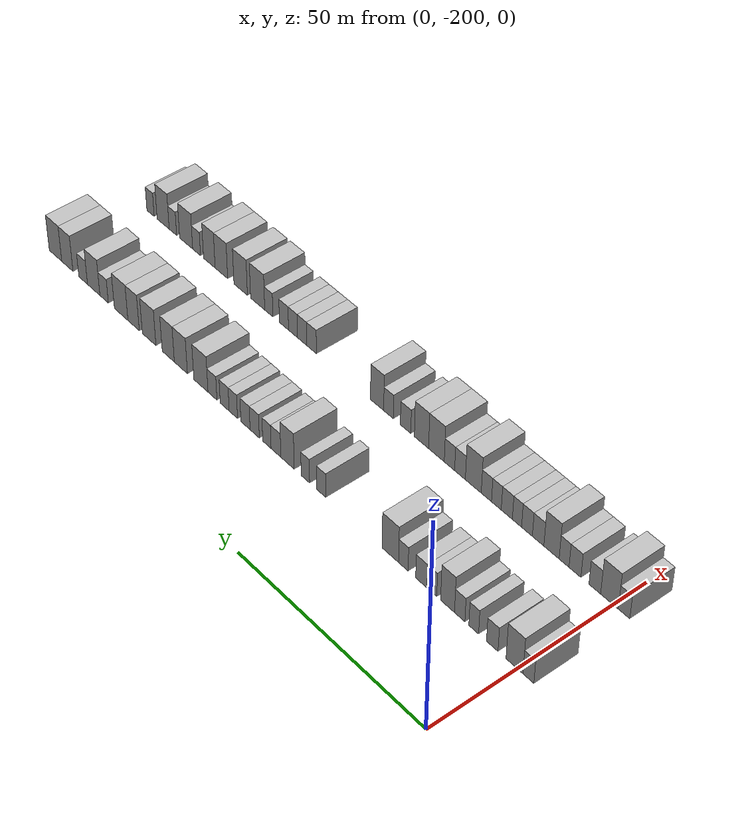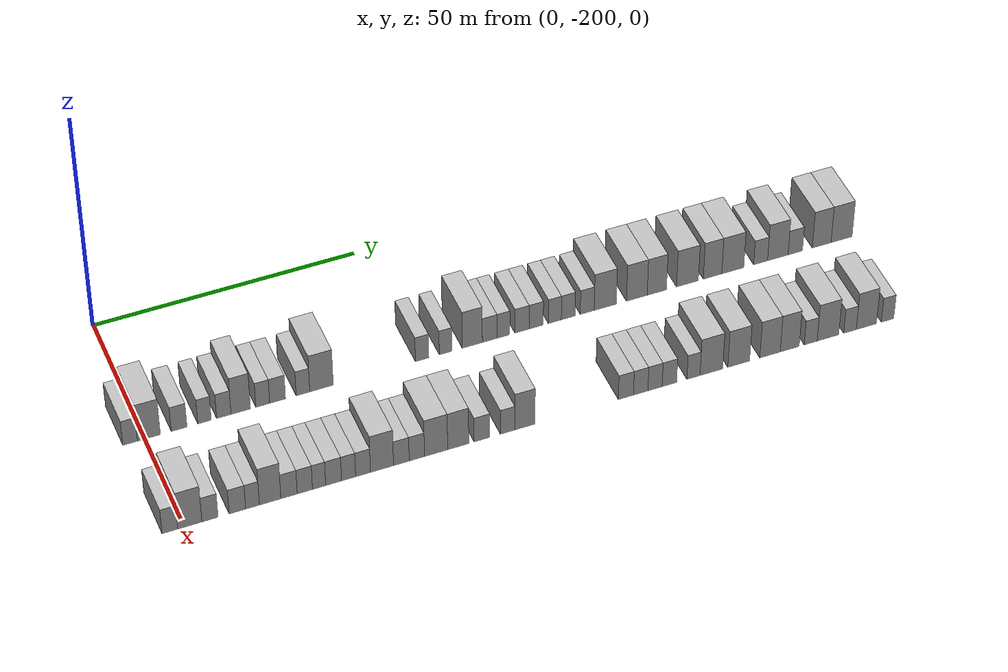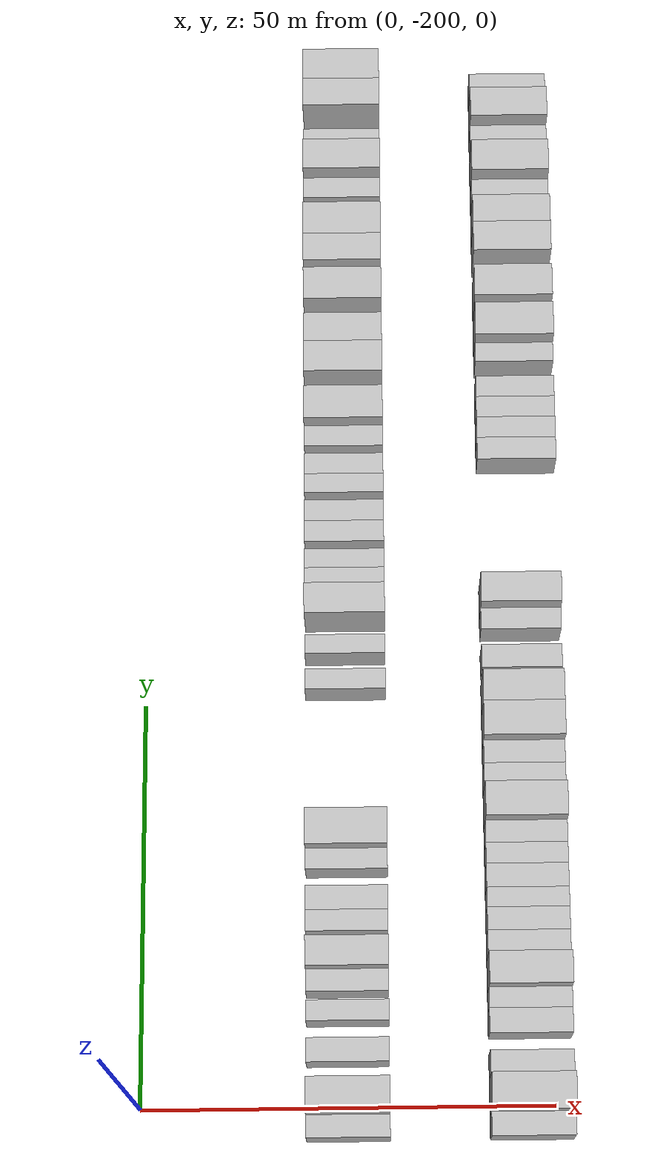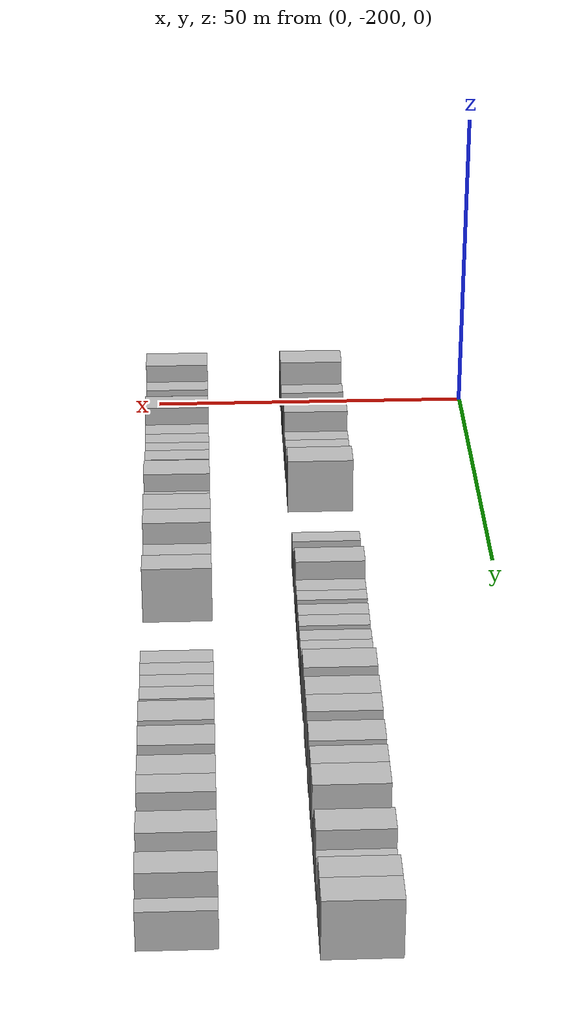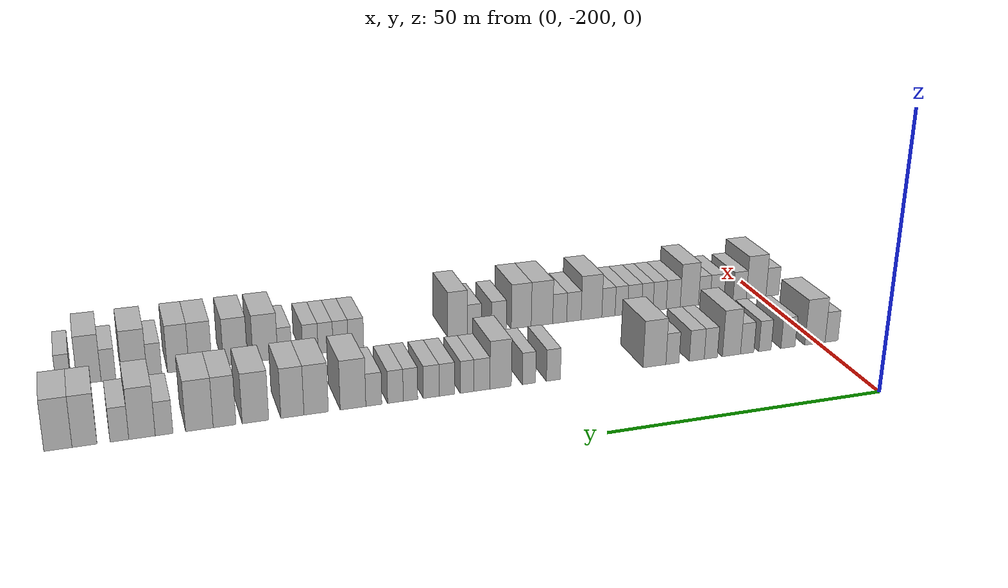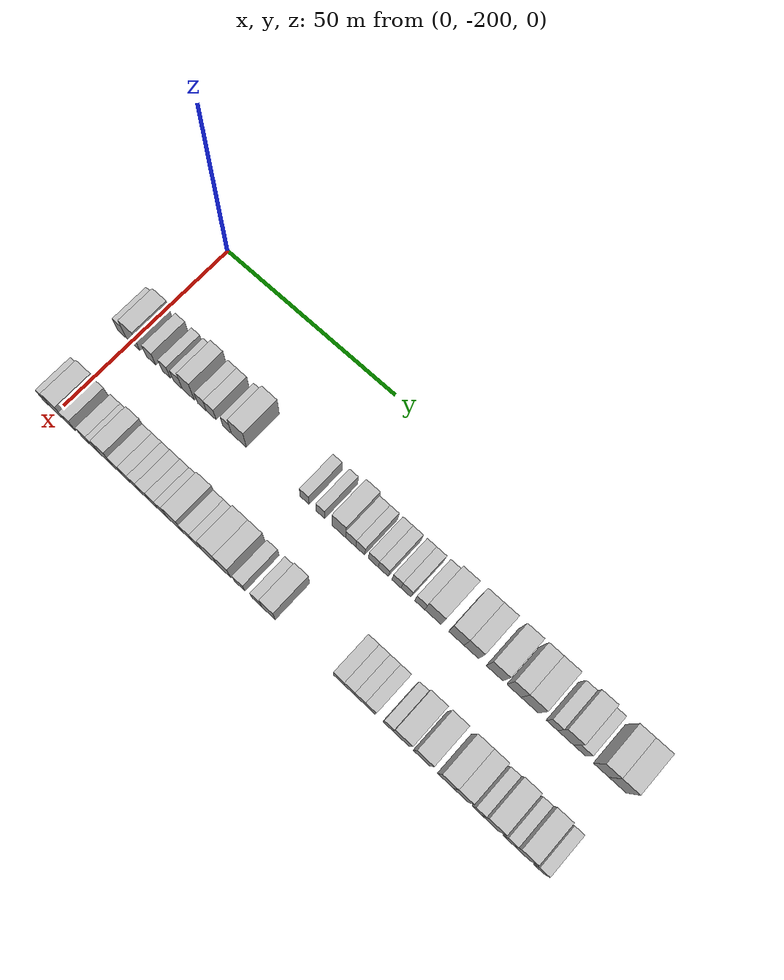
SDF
<sdf version="1.6">
 <world name="default">
  <model name="building_1">
   <static>1</static>
   <pose>25.0000 -202.6611 0 0.000000 0.000000 0.000000</pose>
   <link name="link">
    <pose>0 0 3.00 0 0 0</pose>
    <collision name="collision"><geometry><box><size>10.0000 2.6779 6.0000</size></box></geometry></collision>
    <visual name="visual">
     <cast_shadows>0</cast_shadows>
     <geometry><box><size>10.0000 2.6779 6.0000</size></box></geometry>
     <material>
      <script>
       <uri>model://HANNAS_wall/materials/scripts</uri>
       <uri>model://HANNAS_wall/materials/textures</uri>
       <name>vrc/HANNAS_wall</name>
      </script>
     </material>
    </visual>
   </link>
  </model>
  <model name="building_2">
   <static>1</static>
   <pose>25.0000 -199.2296 0 0.000000 0.000000 0.000000</pose>
   <link name="link">
    <pose>0 0 4.50 0 0 0</pose>
    <collision name="collision"><geometry><box><size>10.0000 4.1851 9.0000</size></box></geometry></collision>
    <visual name="visual">
     <cast_shadows>0</cast_shadows>
     <geometry><box><size>10.0000 4.1851 9.0000</size></box></geometry>
     <material>
      <script>
       <uri>model://HANNAS_wall/materials/scripts</uri>
       <uri>model://HANNAS_wall/materials/textures</uri>
       <name>vrc/HANNAS_wall</name>
      </script>
     </material>
    </visual>
   </link>
  </model>
  <model name="building_3">
   <static>1</static>
   <pose>25.0000 -193.6957 0 0.000000 0.000000 0.000000</pose>
   <link name="link">
    <pose>0 0 3.00 0 0 0</pose>
    <collision name="collision"><geometry><box><size>10.0000 2.8827 6.0000</size></box></geometry></collision>
    <visual name="visual">
     <cast_shadows>0</cast_shadows>
     <geometry><box><size>10.0000 2.8827 6.0000</size></box></geometry>
     <material>
      <script>
       <uri>model://HANNAS_wall/materials/scripts</uri>
       <uri>model://HANNAS_wall/materials/textures</uri>
       <name>vrc/HANNAS_wall</name>
      </script>
     </material>
    </visual>
   </link>
  </model>
  <model name="building_4">
   <static>1</static>
   <pose>25.0000 -189.0134 0 0.000000 0.000000 0.000000</pose>
   <link name="link">
    <pose>0 0 3.00 0 0 0</pose>
    <collision name="collision"><geometry><box><size>10.0000 2.4819 6.0000</size></box></geometry></collision>
    <visual name="visual">
     <cast_shadows>0</cast_shadows>
     <geometry><box><size>10.0000 2.4819 6.0000</size></box></geometry>
     <material>
      <script>
       <uri>model://HANNAS_wall/materials/scripts</uri>
       <uri>model://HANNAS_wall/materials/textures</uri>
       <name>vrc/HANNAS_wall</name>
      </script>
     </material>
    </visual>
   </link>
  </model>
  <model name="building_5">
   <static>1</static>
   <pose>25.0000 -185.4390 0 0.000000 0.000000 0.000000</pose>
   <link name="link">
    <pose>0 0 3.00 0 0 0</pose>
    <collision name="collision"><geometry><box><size>10.0000 2.6669 6.0000</size></box></geometry></collision>
    <visual name="visual">
     <cast_shadows>0</cast_shadows>
     <geometry><box><size>10.0000 2.6669 6.0000</size></box></geometry>
     <material>
      <script>
       <uri>model://HANNAS_wall/materials/scripts</uri>
       <uri>model://HANNAS_wall/materials/textures</uri>
       <name>vrc/HANNAS_wall</name>
      </script>
     </material>
    </visual>
   </link>
  </model>
  <model name="building_6">
   <static>1</static>
   <pose>25.0000 -182.3027 0 0.000000 0.000000 0.000000</pose>
   <link name="link">
    <pose>0 0 4.50 0 0 0</pose>
    <collision name="collision"><geometry><box><size>10.0000 3.6058 9.0000</size></box></geometry></collision>
    <visual name="visual">
     <cast_shadows>0</cast_shadows>
     <geometry><box><size>10.0000 3.6058 9.0000</size></box></geometry>
     <material>
      <script>
       <uri>model://HANNAS_wall/materials/scripts</uri>
       <uri>model://HANNAS_wall/materials/textures</uri>
       <name>vrc/HANNAS_wall</name>
      </script>
     </material>
    </visual>
   </link>
  </model>
  <model name="building_7">
   <static>1</static>
   <pose>25.0000 -178.2073 0 0.000000 0.000000 0.000000</pose>
   <link name="link">
    <pose>0 0 3.00 0 0 0</pose>
    <collision name="collision"><geometry><box><size>10.0000 2.5851 6.0000</size></box></geometry></collision>
    <visual name="visual">
     <cast_shadows>0</cast_shadows>
     <geometry><box><size>10.0000 2.5851 6.0000</size></box></geometry>
     <material>
      <script>
       <uri>model://HANNAS_wall/materials/scripts</uri>
       <uri>model://HANNAS_wall/materials/textures</uri>
       <name>vrc/HANNAS_wall</name>
      </script>
     </material>
    </visual>
   </link>
  </model>
  <model name="building_8">
   <static>1</static>
   <pose>25.0000 -175.4438 0 0.000000 0.000000 0.000000</pose>
   <link name="link">
    <pose>0 0 3.00 0 0 0</pose>
    <collision name="collision"><geometry><box><size>10.0000 2.9420 6.0000</size></box></geometry></collision>
    <visual name="visual">
     <cast_shadows>0</cast_shadows>
     <geometry><box><size>10.0000 2.9420 6.0000</size></box></geometry>
     <material>
      <script>
       <uri>model://HANNAS_wall/materials/scripts</uri>
       <uri>model://HANNAS_wall/materials/textures</uri>
       <name>vrc/HANNAS_wall</name>
      </script>
     </material>
    </visual>
   </link>
  </model>
  <model name="building_9">
   <static>1</static>
   <pose>25.0000 -170.6992 0 0.000000 0.000000 0.000000</pose>
   <link name="link">
    <pose>0 0 3.00 0 0 0</pose>
    <collision name="collision"><geometry><box><size>10.0000 2.5470 6.0000</size></box></geometry></collision>
    <visual name="visual">
     <cast_shadows>0</cast_shadows>
     <geometry><box><size>10.0000 2.5470 6.0000</size></box></geometry>
     <material>
      <script>
       <uri>model://HANNAS_wall/materials/scripts</uri>
       <uri>model://HANNAS_wall/materials/textures</uri>
       <name>vrc/HANNAS_wall</name>
      </script>
     </material>
    </visual>
   </link>
  </model>
  <model name="building_10">
   <static>1</static>
   <pose>25.0000 -167.2199 0 0.000000 0.000000 0.000000</pose>
   <link name="link">
    <pose>0 0 4.50 0 0 0</pose>
    <collision name="collision"><geometry><box><size>10.0000 4.4116 9.0000</size></box></geometry></collision>
    <visual name="visual">
     <cast_shadows>0</cast_shadows>
     <geometry><box><size>10.0000 4.4116 9.0000</size></box></geometry>
     <material>
      <script>
       <uri>model://HANNAS_wall/materials/scripts</uri>
       <uri>model://HANNAS_wall/materials/textures</uri>
       <name>vrc/HANNAS_wall</name>
      </script>
     </material>
    </visual>
   </link>
  </model>
  <model name="building_11">
   <static>1</static>
   <pose>25.0000 -148.1535 0 0.000000 0.000000 0.000000</pose>
   <link name="link">
    <pose>0 0 3.00 0 0 0</pose>
    <collision name="collision"><geometry><box><size>10.0000 2.5738 6.0000</size></box></geometry></collision>
    <visual name="visual">
     <cast_shadows>0</cast_shadows>
     <geometry><box><size>10.0000 2.5738 6.0000</size></box></geometry>
     <material>
      <script>
       <uri>model://HANNAS_wall/materials/scripts</uri>
       <uri>model://HANNAS_wall/materials/textures</uri>
       <name>vrc/HANNAS_wall</name>
      </script>
     </material>
    </visual>
   </link>
  </model>
  <model name="building_12">
   <static>1</static>
   <pose>25.0000 -143.6613 0 0.000000 0.000000 0.000000</pose>
   <link name="link">
    <pose>0 0 3.00 0 0 0</pose>
    <collision name="collision"><geometry><box><size>10.0000 2.4105 6.0000</size></box></geometry></collision>
    <visual name="visual">
     <cast_shadows>0</cast_shadows>
     <geometry><box><size>10.0000 2.4105 6.0000</size></box></geometry>
     <material>
      <script>
       <uri>model://HANNAS_wall/materials/scripts</uri>
       <uri>model://HANNAS_wall/materials/textures</uri>
       <name>vrc/HANNAS_wall</name>
      </script>
     </material>
    </visual>
   </link>
  </model>
  <model name="building_13">
   <static>1</static>
   <pose>25.0000 -138.5214 0 0.000000 0.000000 0.000000</pose>
   <link name="link">
    <pose>0 0 4.50 0 0 0</pose>
    <collision name="collision"><geometry><box><size>10.0000 3.8694 9.0000</size></box></geometry></collision>
    <visual name="visual">
     <cast_shadows>0</cast_shadows>
     <geometry><box><size>10.0000 3.8694 9.0000</size></box></geometry>
     <material>
      <script>
       <uri>model://HANNAS_wall/materials/scripts</uri>
       <uri>model://HANNAS_wall/materials/textures</uri>
       <name>vrc/HANNAS_wall</name>
      </script>
     </material>
    </visual>
   </link>
  </model>
  <model name="building_14">
   <static>1</static>
   <pose>25.0000 -135.1633 0 0.000000 0.000000 0.000000</pose>
   <link name="link">
    <pose>0 0 3.00 0 0 0</pose>
    <collision name="collision"><geometry><box><size>10.0000 2.8466 6.0000</size></box></geometry></collision>
    <visual name="visual">
     <cast_shadows>0</cast_shadows>
     <geometry><box><size>10.0000 2.8466 6.0000</size></box></geometry>
     <material>
      <script>
       <uri>model://HANNAS_wall/materials/scripts</uri>
       <uri>model://HANNAS_wall/materials/textures</uri>
       <name>vrc/HANNAS_wall</name>
      </script>
     </material>
    </visual>
   </link>
  </model>
  <model name="building_15">
   <static>1</static>
   <pose>25.0000 -132.5168 0 0.000000 0.000000 0.000000</pose>
   <link name="link">
    <pose>0 0 3.00 0 0 0</pose>
    <collision name="collision"><geometry><box><size>10.0000 2.4464 6.0000</size></box></geometry></collision>
    <visual name="visual">
     <cast_shadows>0</cast_shadows>
     <geometry><box><size>10.0000 2.4464 6.0000</size></box></geometry>
     <material>
      <script>
       <uri>model://HANNAS_wall/materials/scripts</uri>
       <uri>model://HANNAS_wall/materials/textures</uri>
       <name>vrc/HANNAS_wall</name>
      </script>
     </material>
    </visual>
   </link>
  </model>
  <model name="building_16">
   <static>1</static>
   <pose>25.0000 -128.9212 0 0.000000 0.000000 0.000000</pose>
   <link name="link">
    <pose>0 0 3.00 0 0 0</pose>
    <collision name="collision"><geometry><box><size>10.0000 2.7448 6.0000</size></box></geometry></collision>
    <visual name="visual">
     <cast_shadows>0</cast_shadows>
     <geometry><box><size>10.0000 2.7448 6.0000</size></box></geometry>
     <material>
      <script>
       <uri>model://HANNAS_wall/materials/scripts</uri>
       <uri>model://HANNAS_wall/materials/textures</uri>
       <name>vrc/HANNAS_wall</name>
      </script>
     </material>
    </visual>
   </link>
  </model>
  <model name="building_17">
   <static>1</static>
   <pose>25.0000 -126.1748 0 0.000000 0.000000 0.000000</pose>
   <link name="link">
    <pose>0 0 3.00 0 0 0</pose>
    <collision name="collision"><geometry><box><size>10.0000 2.7481 6.0000</size></box></geometry></collision>
    <visual name="visual">
     <cast_shadows>0</cast_shadows>
     <geometry><box><size>10.0000 2.7481 6.0000</size></box></geometry>
     <material>
      <script>
       <uri>model://HANNAS_wall/materials/scripts</uri>
       <uri>model://HANNAS_wall/materials/textures</uri>
       <name>vrc/HANNAS_wall</name>
      </script>
     </material>
    </visual>
   </link>
  </model>
  <model name="building_18">
   <static>1</static>
   <pose>25.0000 -122.5415 0 0.000000 0.000000 0.000000</pose>
   <link name="link">
    <pose>0 0 3.00 0 0 0</pose>
    <collision name="collision"><geometry><box><size>10.0000 2.5185 6.0000</size></box></geometry></collision>
    <visual name="visual">
     <cast_shadows>0</cast_shadows>
     <geometry><box><size>10.0000 2.5185 6.0000</size></box></geometry>
     <material>
      <script>
       <uri>model://HANNAS_wall/materials/scripts</uri>
       <uri>model://HANNAS_wall/materials/textures</uri>
       <name>vrc/HANNAS_wall</name>
      </script>
     </material>
    </visual>
   </link>
  </model>
  <model name="building_19">
   <static>1</static>
   <pose>25.0000 -119.9310 0 0.000000 0.000000 0.000000</pose>
   <link name="link">
    <pose>0 0 3.00 0 0 0</pose>
    <collision name="collision"><geometry><box><size>10.0000 2.7025 6.0000</size></box></geometry></collision>
    <visual name="visual">
     <cast_shadows>0</cast_shadows>
     <geometry><box><size>10.0000 2.7025 6.0000</size></box></geometry>
     <material>
      <script>
       <uri>model://HANNAS_wall/materials/scripts</uri>
       <uri>model://HANNAS_wall/materials/textures</uri>
       <name>vrc/HANNAS_wall</name>
      </script>
     </material>
    </visual>
   </link>
  </model>
  <model name="building_20">
   <static>1</static>
   <pose>25.0000 -116.2105 0 0.000000 0.000000 0.000000</pose>
   <link name="link">
    <pose>0 0 3.00 0 0 0</pose>
    <collision name="collision"><geometry><box><size>10.0000 2.7385 6.0000</size></box></geometry></collision>
    <visual name="visual">
     <cast_shadows>0</cast_shadows>
     <geometry><box><size>10.0000 2.7385 6.0000</size></box></geometry>
     <material>
      <script>
       <uri>model://HANNAS_wall/materials/scripts</uri>
       <uri>model://HANNAS_wall/materials/textures</uri>
       <name>vrc/HANNAS_wall</name>
      </script>
     </material>
    </visual>
   </link>
  </model>
  <model name="building_21">
   <static>1</static>
   <pose>25.0000 -112.6625 0 0.000000 0.000000 0.000000</pose>
   <link name="link">
    <pose>0 0 4.50 0 0 0</pose>
    <collision name="collision"><geometry><box><size>10.0000 4.3575 9.0000</size></box></geometry></collision>
    <visual name="visual">
     <cast_shadows>0</cast_shadows>
     <geometry><box><size>10.0000 4.3575 9.0000</size></box></geometry>
     <material>
      <script>
       <uri>model://HANNAS_wall/materials/scripts</uri>
       <uri>model://HANNAS_wall/materials/textures</uri>
       <name>vrc/HANNAS_wall</name>
      </script>
     </material>
    </visual>
   </link>
  </model>
  <model name="building_22">
   <static>1</static>
   <pose>25.0000 -106.4396 0 0.000000 0.000000 0.000000</pose>
   <link name="link">
    <pose>0 0 4.50 0 0 0</pose>
    <collision name="collision"><geometry><box><size>10.0000 4.0883 9.0000</size></box></geometry></collision>
    <visual name="visual">
     <cast_shadows>0</cast_shadows>
     <geometry><box><size>10.0000 4.0883 9.0000</size></box></geometry>
     <material>
      <script>
       <uri>model://HANNAS_wall/materials/scripts</uri>
       <uri>model://HANNAS_wall/materials/textures</uri>
       <name>vrc/HANNAS_wall</name>
      </script>
     </material>
    </visual>
   </link>
  </model>
  <model name="building_23">
   <static>1</static>
   <pose>25.0000 -102.4814 0 0.000000 0.000000 0.000000</pose>
   <link name="link">
    <pose>0 0 4.50 0 0 0</pose>
    <collision name="collision"><geometry><box><size>10.0000 3.8283 9.0000</size></box></geometry></collision>
    <visual name="visual">
     <cast_shadows>0</cast_shadows>
     <geometry><box><size>10.0000 3.8283 9.0000</size></box></geometry>
     <material>
      <script>
       <uri>model://HANNAS_wall/materials/scripts</uri>
       <uri>model://HANNAS_wall/materials/textures</uri>
       <name>vrc/HANNAS_wall</name>
      </script>
     </material>
    </visual>
   </link>
  </model>
  <model name="building_24">
   <static>1</static>
   <pose>25.0000 -96.3941 0 0.000000 0.000000 0.000000</pose>
   <link name="link">
    <pose>0 0 4.50 0 0 0</pose>
    <collision name="collision"><geometry><box><size>10.0000 4.3463 9.0000</size></box></geometry></collision>
    <visual name="visual">
     <cast_shadows>0</cast_shadows>
     <geometry><box><size>10.0000 4.3463 9.0000</size></box></geometry>
     <material>
      <script>
       <uri>model://HANNAS_wall/materials/scripts</uri>
       <uri>model://HANNAS_wall/materials/textures</uri>
       <name>vrc/HANNAS_wall</name>
      </script>
     </material>
    </visual>
   </link>
  </model>
  <model name="building_25">
   <static>1</static>
   <pose>25.0000 -91.3771 0 0.000000 0.000000 0.000000</pose>
   <link name="link">
    <pose>0 0 4.50 0 0 0</pose>
    <collision name="collision"><geometry><box><size>10.0000 3.6876 9.0000</size></box></geometry></collision>
    <visual name="visual">
     <cast_shadows>0</cast_shadows>
     <geometry><box><size>10.0000 3.6876 9.0000</size></box></geometry>
     <material>
      <script>
       <uri>model://HANNAS_wall/materials/scripts</uri>
       <uri>model://HANNAS_wall/materials/textures</uri>
       <name>vrc/HANNAS_wall</name>
      </script>
     </material>
    </visual>
   </link>
  </model>
  <model name="building_26">
   <static>1</static>
   <pose>25.0000 -87.3219 0 0.000000 0.000000 0.000000</pose>
   <link name="link">
    <pose>0 0 4.50 0 0 0</pose>
    <collision name="collision"><geometry><box><size>10.0000 4.4229 9.0000</size></box></geometry></collision>
    <visual name="visual">
     <cast_shadows>0</cast_shadows>
     <geometry><box><size>10.0000 4.4229 9.0000</size></box></geometry>
     <material>
      <script>
       <uri>model://HANNAS_wall/materials/scripts</uri>
       <uri>model://HANNAS_wall/materials/textures</uri>
       <name>vrc/HANNAS_wall</name>
      </script>
     </material>
    </visual>
   </link>
  </model>
  <model name="building_27">
   <static>1</static>
   <pose>25.0000 -81.7084 0 0.000000 0.000000 0.000000</pose>
   <link name="link">
    <pose>0 0 3.00 0 0 0</pose>
    <collision name="collision"><geometry><box><size>10.0000 2.8041 6.0000</size></box></geometry></collision>
    <visual name="visual">
     <cast_shadows>0</cast_shadows>
     <geometry><box><size>10.0000 2.8041 6.0000</size></box></geometry>
     <material>
      <script>
       <uri>model://HANNAS_wall/materials/scripts</uri>
       <uri>model://HANNAS_wall/materials/textures</uri>
       <name>vrc/HANNAS_wall</name>
      </script>
     </material>
    </visual>
   </link>
  </model>
  <model name="building_28">
   <static>1</static>
   <pose>25.0000 -78.2339 0 0.000000 0.000000 0.000000</pose>
   <link name="link">
    <pose>0 0 4.50 0 0 0</pose>
    <collision name="collision"><geometry><box><size>10.0000 4.1448 9.0000</size></box></geometry></collision>
    <visual name="visual">
     <cast_shadows>0</cast_shadows>
     <geometry><box><size>10.0000 4.1448 9.0000</size></box></geometry>
     <material>
      <script>
       <uri>model://HANNAS_wall/materials/scripts</uri>
       <uri>model://HANNAS_wall/materials/textures</uri>
       <name>vrc/HANNAS_wall</name>
      </script>
     </material>
    </visual>
   </link>
  </model>
  <model name="building_29">
   <static>1</static>
   <pose>25.0000 -74.7039 0 0.000000 0.000000 0.000000</pose>
   <link name="link">
    <pose>0 0 3.00 0 0 0</pose>
    <collision name="collision"><geometry><box><size>10.0000 2.9154 6.0000</size></box></geometry></collision>
    <visual name="visual">
     <cast_shadows>0</cast_shadows>
     <geometry><box><size>10.0000 2.9154 6.0000</size></box></geometry>
     <material>
      <script>
       <uri>model://HANNAS_wall/materials/scripts</uri>
       <uri>model://HANNAS_wall/materials/textures</uri>
       <name>vrc/HANNAS_wall</name>
      </script>
     </material>
    </visual>
   </link>
  </model>
  <model name="building_30">
   <static>1</static>
   <pose>25.0000 -69.3345 0 0.000000 0.000000 0.000000</pose>
   <link name="link">
    <pose>0 0 4.50 0 0 0</pose>
    <collision name="collision"><geometry><box><size>10.0000 3.8234 9.0000</size></box></geometry></collision>
    <visual name="visual">
     <cast_shadows>0</cast_shadows>
     <geometry><box><size>10.0000 3.8234 9.0000</size></box></geometry>
     <material>
      <script>
       <uri>model://HANNAS_wall/materials/scripts</uri>
       <uri>model://HANNAS_wall/materials/textures</uri>
       <name>vrc/HANNAS_wall</name>
      </script>
     </material>
    </visual>
   </link>
  </model>
  <model name="building_31">
   <static>1</static>
   <pose>25.0000 -65.2786 0 0.000000 0.000000 0.000000</pose>
   <link name="link">
    <pose>0 0 4.50 0 0 0</pose>
    <collision name="collision"><geometry><box><size>10.0000 4.2884 9.0000</size></box></geometry></collision>
    <visual name="visual">
     <cast_shadows>0</cast_shadows>
     <geometry><box><size>10.0000 4.2884 9.0000</size></box></geometry>
     <material>
      <script>
       <uri>model://HANNAS_wall/materials/scripts</uri>
       <uri>model://HANNAS_wall/materials/textures</uri>
       <name>vrc/HANNAS_wall</name>
      </script>
     </material>
    </visual>
   </link>
  </model>
  <model name="building_92">
   <static>1</static>
   <pose>47.0000 -202.5914 0 0.000000 0.000000 0.000000</pose>
   <link name="link">
    <pose>0 0 3.00 0 0 0</pose>
    <collision name="collision"><geometry><box><size>10.0000 2.8171 6.0000</size></box></geometry></collision>
    <visual name="visual">
     <cast_shadows>0</cast_shadows>
     <geometry><box><size>10.0000 2.8171 6.0000</size></box></geometry>
     <material>
      <script>
       <uri>model://HANNAS_wall/materials/scripts</uri>
       <uri>model://HANNAS_wall/materials/textures</uri>
       <name>vrc/HANNAS_wall</name>
      </script>
     </material>
    </visual>
   </link>
  </model>
  <model name="building_93">
   <static>1</static>
   <pose>47.0000 -199.0186 0 0.000000 0.000000 0.000000</pose>
   <link name="link">
    <pose>0 0 4.50 0 0 0</pose>
    <collision name="collision"><geometry><box><size>10.0000 4.3286 9.0000</size></box></geometry></collision>
    <visual name="visual">
     <cast_shadows>0</cast_shadows>
     <geometry><box><size>10.0000 4.3286 9.0000</size></box></geometry>
     <material>
      <script>
       <uri>model://HANNAS_wall/materials/scripts</uri>
       <uri>model://HANNAS_wall/materials/textures</uri>
       <name>vrc/HANNAS_wall</name>
      </script>
     </material>
    </visual>
   </link>
  </model>
  <model name="building_94">
   <static>1</static>
   <pose>47.0000 -195.4039 0 0.000000 0.000000 0.000000</pose>
   <link name="link">
    <pose>0 0 3.00 0 0 0</pose>
    <collision name="collision"><geometry><box><size>10.0000 2.9009 6.0000</size></box></geometry></collision>
    <visual name="visual">
     <cast_shadows>0</cast_shadows>
     <geometry><box><size>10.0000 2.9009 6.0000</size></box></geometry>
     <material>
      <script>
       <uri>model://HANNAS_wall/materials/scripts</uri>
       <uri>model://HANNAS_wall/materials/textures</uri>
       <name>vrc/HANNAS_wall</name>
      </script>
     </material>
    </visual>
   </link>
  </model>
  <model name="building_95">
   <static>1</static>
   <pose>47.0000 -190.4600 0 0.000000 0.000000 0.000000</pose>
   <link name="link">
    <pose>0 0 3.00 0 0 0</pose>
    <collision name="collision"><geometry><box><size>10.0000 2.9867 6.0000</size></box></geometry></collision>
    <visual name="visual">
     <cast_shadows>0</cast_shadows>
     <geometry><box><size>10.0000 2.9867 6.0000</size></box></geometry>
     <material>
      <script>
       <uri>model://HANNAS_wall/materials/scripts</uri>
       <uri>model://HANNAS_wall/materials/textures</uri>
       <name>vrc/HANNAS_wall</name>
      </script>
     </material>
    </visual>
   </link>
  </model>
  <model name="building_96">
   <static>1</static>
   <pose>47.0000 -187.7185 0 0.000000 0.000000 0.000000</pose>
   <link name="link">
    <pose>0 0 3.00 0 0 0</pose>
    <collision name="collision"><geometry><box><size>10.0000 2.4963 6.0000</size></box></geometry></collision>
    <visual name="visual">
     <cast_shadows>0</cast_shadows>
     <geometry><box><size>10.0000 2.4963 6.0000</size></box></geometry>
     <material>
      <script>
       <uri>model://HANNAS_wall/materials/scripts</uri>
       <uri>model://HANNAS_wall/materials/textures</uri>
       <name>vrc/HANNAS_wall</name>
      </script>
     </material>
    </visual>
   </link>
  </model>
  <model name="building_97">
   <static>1</static>
   <pose>47.0000 -184.5213 0 0.000000 0.000000 0.000000</pose>
   <link name="link">
    <pose>0 0 4.50 0 0 0</pose>
    <collision name="collision"><geometry><box><size>10.0000 3.8980 9.0000</size></box></geometry></collision>
    <visual name="visual">
     <cast_shadows>0</cast_shadows>
     <geometry><box><size>10.0000 3.8980 9.0000</size></box></geometry>
     <material>
      <script>
       <uri>model://HANNAS_wall/materials/scripts</uri>
       <uri>model://HANNAS_wall/materials/textures</uri>
       <name>vrc/HANNAS_wall</name>
      </script>
     </material>
    </visual>
   </link>
  </model>
  <model name="building_98">
   <static>1</static>
   <pose>47.0000 -181.0900 0 0.000000 0.000000 0.000000</pose>
   <link name="link">
    <pose>0 0 3.00 0 0 0</pose>
    <collision name="collision"><geometry><box><size>10.0000 2.9645 6.0000</size></box></geometry></collision>
    <visual name="visual">
     <cast_shadows>0</cast_shadows>
     <geometry><box><size>10.0000 2.9645 6.0000</size></box></geometry>
     <material>
      <script>
       <uri>model://HANNAS_wall/materials/scripts</uri>
       <uri>model://HANNAS_wall/materials/textures</uri>
       <name>vrc/HANNAS_wall</name>
      </script>
     </material>
    </visual>
   </link>
  </model>
  <model name="building_99">
   <static>1</static>
   <pose>47.0000 -178.2093 0 0.000000 0.000000 0.000000</pose>
   <link name="link">
    <pose>0 0 3.00 0 0 0</pose>
    <collision name="collision"><geometry><box><size>10.0000 2.7970 6.0000</size></box></geometry></collision>
    <visual name="visual">
     <cast_shadows>0</cast_shadows>
     <geometry><box><size>10.0000 2.7970 6.0000</size></box></geometry>
     <material>
      <script>
       <uri>model://HANNAS_wall/materials/scripts</uri>
       <uri>model://HANNAS_wall/materials/textures</uri>
       <name>vrc/HANNAS_wall</name>
      </script>
     </material>
    </visual>
   </link>
  </model>
  <model name="building_100">
   <static>1</static>
   <pose>47.0000 -175.6083 0 0.000000 0.000000 0.000000</pose>
   <link name="link">
    <pose>0 0 3.00 0 0 0</pose>
    <collision name="collision"><geometry><box><size>10.0000 2.4050 6.0000</size></box></geometry></collision>
    <visual name="visual">
     <cast_shadows>0</cast_shadows>
     <geometry><box><size>10.0000 2.4050 6.0000</size></box></geometry>
     <material>
      <script>
       <uri>model://HANNAS_wall/materials/scripts</uri>
       <uri>model://HANNAS_wall/materials/textures</uri>
       <name>vrc/HANNAS_wall</name>
      </script>
     </material>
    </visual>
   </link>
  </model>
  <model name="building_101">
   <static>1</static>
   <pose>47.0000 -172.9457 0 0.000000 0.000000 0.000000</pose>
   <link name="link">
    <pose>0 0 3.00 0 0 0</pose>
    <collision name="collision"><geometry><box><size>10.0000 2.9203 6.0000</size></box></geometry></collision>
    <visual name="visual">
     <cast_shadows>0</cast_shadows>
     <geometry><box><size>10.0000 2.9203 6.0000</size></box></geometry>
     <material>
      <script>
       <uri>model://HANNAS_wall/materials/scripts</uri>
       <uri>model://HANNAS_wall/materials/textures</uri>
       <name>vrc/HANNAS_wall</name>
      </script>
     </material>
    </visual>
   </link>
  </model>
  <model name="building_102">
   <static>1</static>
   <pose>47.0000 -170.1955 0 0.000000 0.000000 0.000000</pose>
   <link name="link">
    <pose>0 0 3.00 0 0 0</pose>
    <collision name="collision"><geometry><box><size>10.0000 2.5801 6.0000</size></box></geometry></collision>
    <visual name="visual">
     <cast_shadows>0</cast_shadows>
     <geometry><box><size>10.0000 2.5801 6.0000</size></box></geometry>
     <material>
      <script>
       <uri>model://HANNAS_wall/materials/scripts</uri>
       <uri>model://HANNAS_wall/materials/textures</uri>
       <name>vrc/HANNAS_wall</name>
      </script>
     </material>
    </visual>
   </link>
  </model>
  <model name="building_103">
   <static>1</static>
   <pose>47.0000 -167.5399 0 0.000000 0.000000 0.000000</pose>
   <link name="link">
    <pose>0 0 3.00 0 0 0</pose>
    <collision name="collision"><geometry><box><size>10.0000 2.7310 6.0000</size></box></geometry></collision>
    <visual name="visual">
     <cast_shadows>0</cast_shadows>
     <geometry><box><size>10.0000 2.7310 6.0000</size></box></geometry>
     <material>
      <script>
       <uri>model://HANNAS_wall/materials/scripts</uri>
       <uri>model://HANNAS_wall/materials/textures</uri>
       <name>vrc/HANNAS_wall</name>
      </script>
     </material>
    </visual>
   </link>
  </model>
  <model name="building_104">
   <static>1</static>
   <pose>47.0000 -164.0424 0 0.000000 0.000000 0.000000</pose>
   <link name="link">
    <pose>0 0 4.50 0 0 0</pose>
    <collision name="collision"><geometry><box><size>10.0000 4.2639 9.0000</size></box></geometry></collision>
    <visual name="visual">
     <cast_shadows>0</cast_shadows>
     <geometry><box><size>10.0000 4.2639 9.0000</size></box></geometry>
     <material>
      <script>
       <uri>model://HANNAS_wall/materials/scripts</uri>
       <uri>model://HANNAS_wall/materials/textures</uri>
       <name>vrc/HANNAS_wall</name>
      </script>
     </material>
    </visual>
   </link>
  </model>
  <model name="building_105">
   <static>1</static>
   <pose>47.0000 -160.4554 0 0.000000 0.000000 0.000000</pose>
   <link name="link">
    <pose>0 0 3.00 0 0 0</pose>
    <collision name="collision"><geometry><box><size>10.0000 2.9101 6.0000</size></box></geometry></collision>
    <visual name="visual">
     <cast_shadows>0</cast_shadows>
     <geometry><box><size>10.0000 2.9101 6.0000</size></box></geometry>
     <material>
      <script>
       <uri>model://HANNAS_wall/materials/scripts</uri>
       <uri>model://HANNAS_wall/materials/textures</uri>
       <name>vrc/HANNAS_wall</name>
      </script>
     </material>
    </visual>
   </link>
  </model>
  <model name="building_106">
   <static>1</static>
   <pose>47.0000 -157.5852 0 0.000000 0.000000 0.000000</pose>
   <link name="link">
    <pose>0 0 3.00 0 0 0</pose>
    <collision name="collision"><geometry><box><size>10.0000 2.8303 6.0000</size></box></geometry></collision>
    <visual name="visual">
     <cast_shadows>0</cast_shadows>
     <geometry><box><size>10.0000 2.8303 6.0000</size></box></geometry>
     <material>
      <script>
       <uri>model://HANNAS_wall/materials/scripts</uri>
       <uri>model://HANNAS_wall/materials/textures</uri>
       <name>vrc/HANNAS_wall</name>
      </script>
     </material>
    </visual>
   </link>
  </model>
  <model name="building_107">
   <static>1</static>
   <pose>47.0000 -154.0114 0 0.000000 0.000000 0.000000</pose>
   <link name="link">
    <pose>0 0 4.50 0 0 0</pose>
    <collision name="collision"><geometry><box><size>10.0000 4.3173 9.0000</size></box></geometry></collision>
    <visual name="visual">
     <cast_shadows>0</cast_shadows>
     <geometry><box><size>10.0000 4.3173 9.0000</size></box></geometry>
     <material>
      <script>
       <uri>model://HANNAS_wall/materials/scripts</uri>
       <uri>model://HANNAS_wall/materials/textures</uri>
       <name>vrc/HANNAS_wall</name>
      </script>
     </material>
    </visual>
   </link>
  </model>
  <model name="building_108">
   <static>1</static>
   <pose>47.0000 -149.8742 0 0.000000 0.000000 0.000000</pose>
   <link name="link">
    <pose>0 0 4.50 0 0 0</pose>
    <collision name="collision"><geometry><box><size>10.0000 3.9573 9.0000</size></box></geometry></collision>
    <visual name="visual">
     <cast_shadows>0</cast_shadows>
     <geometry><box><size>10.0000 3.9573 9.0000</size></box></geometry>
     <material>
      <script>
       <uri>model://HANNAS_wall/materials/scripts</uri>
       <uri>model://HANNAS_wall/materials/textures</uri>
       <name>vrc/HANNAS_wall</name>
      </script>
     </material>
    </visual>
   </link>
  </model>
  <model name="building_109">
   <static>1</static>
   <pose>47.0000 -145.4251 0 0.000000 0.000000 0.000000</pose>
   <link name="link">
    <pose>0 0 3.00 0 0 0</pose>
    <collision name="collision"><geometry><box><size>10.0000 2.9408 6.0000</size></box></geometry></collision>
    <visual name="visual">
     <cast_shadows>0</cast_shadows>
     <geometry><box><size>10.0000 2.9408 6.0000</size></box></geometry>
     <material>
      <script>
       <uri>model://HANNAS_wall/materials/scripts</uri>
       <uri>model://HANNAS_wall/materials/textures</uri>
       <name>vrc/HANNAS_wall</name>
      </script>
     </material>
    </visual>
   </link>
  </model>
  <model name="building_110">
   <static>1</static>
   <pose>47.0000 -140.5923 0 0.000000 0.000000 0.000000</pose>
   <link name="link">
    <pose>0 0 3.00 0 0 0</pose>
    <collision name="collision"><geometry><box><size>10.0000 2.7248 6.0000</size></box></geometry></collision>
    <visual name="visual">
     <cast_shadows>0</cast_shadows>
     <geometry><box><size>10.0000 2.7248 6.0000</size></box></geometry>
     <material>
      <script>
       <uri>model://HANNAS_wall/materials/scripts</uri>
       <uri>model://HANNAS_wall/materials/textures</uri>
       <name>vrc/HANNAS_wall</name>
      </script>
     </material>
    </visual>
   </link>
  </model>
  <model name="building_111">
   <static>1</static>
   <pose>47.0000 -137.3353 0 0.000000 0.000000 0.000000</pose>
   <link name="link">
    <pose>0 0 4.50 0 0 0</pose>
    <collision name="collision"><geometry><box><size>10.0000 3.7892 9.0000</size></box></geometry></collision>
    <visual name="visual">
     <cast_shadows>0</cast_shadows>
     <geometry><box><size>10.0000 3.7892 9.0000</size></box></geometry>
     <material>
      <script>
       <uri>model://HANNAS_wall/materials/scripts</uri>
       <uri>model://HANNAS_wall/materials/textures</uri>
       <name>vrc/HANNAS_wall</name>
      </script>
     </material>
    </visual>
   </link>
  </model>
  <model name="building_112">
   <static>1</static>
   <pose>47.0000 -118.0878 0 0.000000 0.000000 0.000000</pose>
   <link name="link">
    <pose>0 0 3.00 0 0 0</pose>
    <collision name="collision"><geometry><box><size>10.0000 2.9020 6.0000</size></box></geometry></collision>
    <visual name="visual">
     <cast_shadows>0</cast_shadows>
     <geometry><box><size>10.0000 2.9020 6.0000</size></box></geometry>
     <material>
      <script>
       <uri>model://HANNAS_wall/materials/scripts</uri>
       <uri>model://HANNAS_wall/materials/textures</uri>
       <name>vrc/HANNAS_wall</name>
      </script>
     </material>
    </visual>
   </link>
  </model>
  <model name="building_113">
   <static>1</static>
   <pose>47.0000 -115.2452 0 0.000000 0.000000 0.000000</pose>
   <link name="link">
    <pose>0 0 3.00 0 0 0</pose>
    <collision name="collision"><geometry><box><size>10.0000 2.7833 6.0000</size></box></geometry></collision>
    <visual name="visual">
     <cast_shadows>0</cast_shadows>
     <geometry><box><size>10.0000 2.7833 6.0000</size></box></geometry>
     <material>
      <script>
       <uri>model://HANNAS_wall/materials/scripts</uri>
       <uri>model://HANNAS_wall/materials/textures</uri>
       <name>vrc/HANNAS_wall</name>
      </script>
     </material>
    </visual>
   </link>
  </model>
  <model name="building_114">
   <static>1</static>
   <pose>47.0000 -112.4766 0 0.000000 0.000000 0.000000</pose>
   <link name="link">
    <pose>0 0 3.00 0 0 0</pose>
    <collision name="collision"><geometry><box><size>10.0000 2.7537 6.0000</size></box></geometry></collision>
    <visual name="visual">
     <cast_shadows>0</cast_shadows>
     <geometry><box><size>10.0000 2.7537 6.0000</size></box></geometry>
     <material>
      <script>
       <uri>model://HANNAS_wall/materials/scripts</uri>
       <uri>model://HANNAS_wall/materials/textures</uri>
       <name>vrc/HANNAS_wall</name>
      </script>
     </material>
    </visual>
   </link>
  </model>
  <model name="building_115">
   <static>1</static>
   <pose>47.0000 -109.7002 0 0.000000 0.000000 0.000000</pose>
   <link name="link">
    <pose>0 0 3.00 0 0 0</pose>
    <collision name="collision"><geometry><box><size>10.0000 2.7991 6.0000</size></box></geometry></collision>
    <visual name="visual">
     <cast_shadows>0</cast_shadows>
     <geometry><box><size>10.0000 2.7991 6.0000</size></box></geometry>
     <material>
      <script>
       <uri>model://HANNAS_wall/materials/scripts</uri>
       <uri>model://HANNAS_wall/materials/textures</uri>
       <name>vrc/HANNAS_wall</name>
      </script>
     </material>
    </visual>
   </link>
  </model>
  <model name="building_116">
   <static>1</static>
   <pose>47.0000 -105.0293 0 0.000000 0.000000 0.000000</pose>
   <link name="link">
    <pose>0 0 3.00 0 0 0</pose>
    <collision name="collision"><geometry><box><size>10.0000 2.5428 6.0000</size></box></geometry></collision>
    <visual name="visual">
     <cast_shadows>0</cast_shadows>
     <geometry><box><size>10.0000 2.5428 6.0000</size></box></geometry>
     <material>
      <script>
       <uri>model://HANNAS_wall/materials/scripts</uri>
       <uri>model://HANNAS_wall/materials/textures</uri>
       <name>vrc/HANNAS_wall</name>
      </script>
     </material>
    </visual>
   </link>
  </model>
  <model name="building_117">
   <static>1</static>
   <pose>47.0000 -101.5491 0 0.000000 0.000000 0.000000</pose>
   <link name="link">
    <pose>0 0 4.50 0 0 0</pose>
    <collision name="collision"><geometry><box><size>10.0000 4.4178 9.0000</size></box></geometry></collision>
    <visual name="visual">
     <cast_shadows>0</cast_shadows>
     <geometry><box><size>10.0000 4.4178 9.0000</size></box></geometry>
     <material>
      <script>
       <uri>model://HANNAS_wall/materials/scripts</uri>
       <uri>model://HANNAS_wall/materials/textures</uri>
       <name>vrc/HANNAS_wall</name>
      </script>
     </material>
    </visual>
   </link>
  </model>
  <model name="building_118">
   <static>1</static>
   <pose>47.0000 -96.2090 0 0.000000 0.000000 0.000000</pose>
   <link name="link">
    <pose>0 0 4.50 0 0 0</pose>
    <collision name="collision"><geometry><box><size>10.0000 4.2623 9.0000</size></box></geometry></collision>
    <visual name="visual">
     <cast_shadows>0</cast_shadows>
     <geometry><box><size>10.0000 4.2623 9.0000</size></box></geometry>
     <material>
      <script>
       <uri>model://HANNAS_wall/materials/scripts</uri>
       <uri>model://HANNAS_wall/materials/textures</uri>
       <name>vrc/HANNAS_wall</name>
      </script>
     </material>
    </visual>
   </link>
  </model>
  <model name="building_119">
   <static>1</static>
   <pose>47.0000 -90.0663 0 0.000000 0.000000 0.000000</pose>
   <link name="link">
    <pose>0 0 4.50 0 0 0</pose>
    <collision name="collision"><geometry><box><size>10.0000 4.0232 9.0000</size></box></geometry></collision>
    <visual name="visual">
     <cast_shadows>0</cast_shadows>
     <geometry><box><size>10.0000 4.0232 9.0000</size></box></geometry>
     <material>
      <script>
       <uri>model://HANNAS_wall/materials/scripts</uri>
       <uri>model://HANNAS_wall/materials/textures</uri>
       <name>vrc/HANNAS_wall</name>
      </script>
     </material>
    </visual>
   </link>
  </model>
  <model name="building_120">
   <static>1</static>
   <pose>47.0000 -86.1837 0 0.000000 0.000000 0.000000</pose>
   <link name="link">
    <pose>0 0 4.50 0 0 0</pose>
    <collision name="collision"><geometry><box><size>10.0000 3.7420 9.0000</size></box></geometry></collision>
    <visual name="visual">
     <cast_shadows>0</cast_shadows>
     <geometry><box><size>10.0000 3.7420 9.0000</size></box></geometry>
     <material>
      <script>
       <uri>model://HANNAS_wall/materials/scripts</uri>
       <uri>model://HANNAS_wall/materials/textures</uri>
       <name>vrc/HANNAS_wall</name>
      </script>
     </material>
    </visual>
   </link>
  </model>
  <model name="building_121">
   <static>1</static>
   <pose>47.0000 -82.0354 0 0.000000 0.000000 0.000000</pose>
   <link name="link">
    <pose>0 0 3.00 0 0 0</pose>
    <collision name="collision"><geometry><box><size>10.0000 2.5545 6.0000</size></box></geometry></collision>
    <visual name="visual">
     <cast_shadows>0</cast_shadows>
     <geometry><box><size>10.0000 2.5545 6.0000</size></box></geometry>
     <material>
      <script>
       <uri>model://HANNAS_wall/materials/scripts</uri>
       <uri>model://HANNAS_wall/materials/textures</uri>
       <name>vrc/HANNAS_wall</name>
      </script>
     </material>
    </visual>
   </link>
  </model>
  <model name="building_122">
   <static>1</static>
   <pose>47.0000 -78.6139 0 0.000000 0.000000 0.000000</pose>
   <link name="link">
    <pose>0 0 4.50 0 0 0</pose>
    <collision name="collision"><geometry><box><size>10.0000 4.2886 9.0000</size></box></geometry></collision>
    <visual name="visual">
     <cast_shadows>0</cast_shadows>
     <geometry><box><size>10.0000 4.2886 9.0000</size></box></geometry>
     <material>
      <script>
       <uri>model://HANNAS_wall/materials/scripts</uri>
       <uri>model://HANNAS_wall/materials/textures</uri>
       <name>vrc/HANNAS_wall</name>
      </script>
     </material>
    </visual>
   </link>
  </model>
  <model name="building_123">
   <static>1</static>
   <pose>47.0000 -74.2224 0 0.000000 0.000000 0.000000</pose>
   <link name="link">
    <pose>0 0 3.00 0 0 0</pose>
    <collision name="collision"><geometry><box><size>10.0000 2.4943 6.0000</size></box></geometry></collision>
    <visual name="visual">
     <cast_shadows>0</cast_shadows>
     <geometry><box><size>10.0000 2.4943 6.0000</size></box></geometry>
     <material>
      <script>
       <uri>model://HANNAS_wall/materials/scripts</uri>
       <uri>model://HANNAS_wall/materials/textures</uri>
       <name>vrc/HANNAS_wall</name>
      </script>
     </material>
    </visual>
   </link>
  </model>
  <model name="building_124">
   <static>1</static>
   <pose>47.0000 -70.9610 0 0.000000 0.000000 0.000000</pose>
   <link name="link">
    <pose>0 0 4.50 0 0 0</pose>
    <collision name="collision"><geometry><box><size>10.0000 4.0286 9.0000</size></box></geometry></collision>
    <visual name="visual">
     <cast_shadows>0</cast_shadows>
     <geometry><box><size>10.0000 4.0286 9.0000</size></box></geometry>
     <material>
      <script>
       <uri>model://HANNAS_wall/materials/scripts</uri>
       <uri>model://HANNAS_wall/materials/textures</uri>
       <name>vrc/HANNAS_wall</name>
      </script>
     </material>
    </visual>
   </link>
  </model>
  <model name="building_125">
   <static>1</static>
   <pose>47.0000 -66.7163 0 0.000000 0.000000 0.000000</pose>
   <link name="link">
    <pose>0 0 3.00 0 0 0</pose>
    <collision name="collision"><geometry><box><size>10.0000 2.4608 6.0000</size></box></geometry></collision>
    <visual name="visual">
     <cast_shadows>0</cast_shadows>
     <geometry><box><size>10.0000 2.4608 6.0000</size></box></geometry>
     <material>
      <script>
       <uri>model://HANNAS_wall/materials/scripts</uri>
       <uri>model://HANNAS_wall/materials/textures</uri>
       <name>vrc/HANNAS_wall</name>
      </script>
     </material>
    </visual>
   </link>
  </model>
 </world>
</sdf>
